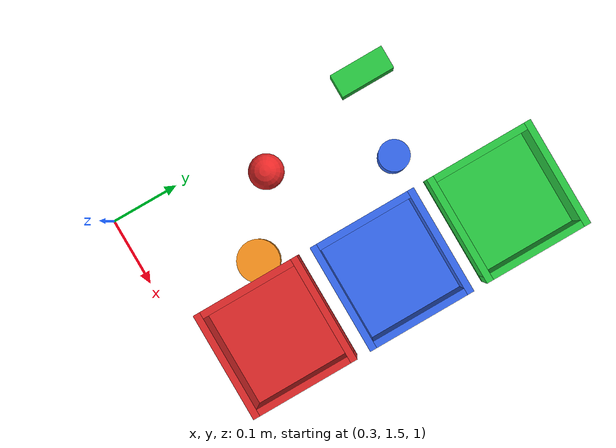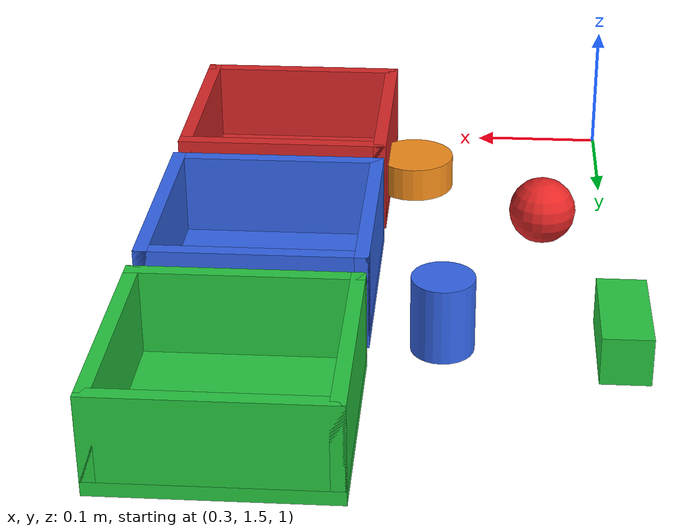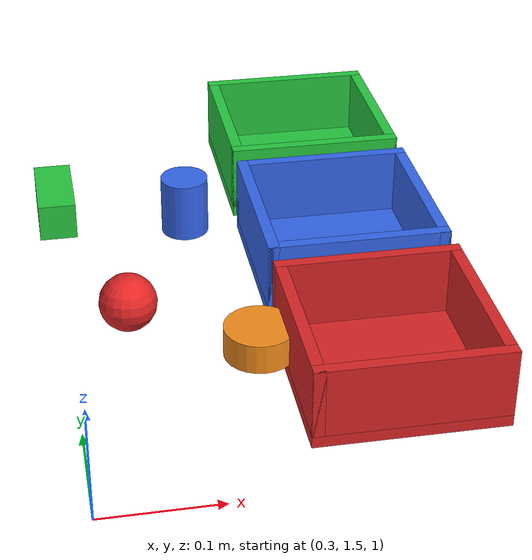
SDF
<sdf version="1.9">
 <world name="vla_pipeline_env">
  <physics name="1ms" type="ignored">
   <max_step_size>0.001</max_step_size>
   <real_time_factor>1.0</real_time_factor>
   <real_time_update_rate>1000</real_time_update_rate>
  </physics>
  <plugin name="gz::sim::systems::Physics" filename="gz-sim-physics-system"/>
  <plugin name="gz::sim::systems::UserCommands" filename="gz-sim-user-commands-system"/>
  <plugin name="gz::sim::systems::Sensors" filename="gz-sim-sensors-system">
   <render_engine>ogre2</render_engine>
  </plugin>
  <plugin name="gz::sim::systems::SceneBroadcaster" filename="gz-sim-scene-broadcaster-system"/>
  <scene>
   <ambient>0.50 0.50 0.50 1</ambient>
   <background>0.68 0.72 0.76 1</background>
   <shadows>true</shadows>
  </scene>
  <gravity>0 0 -9.8</gravity>
  <include><uri>model://ground_plane</uri></include>
  <include><uri>model://sun</uri></include>
  <model name="obj_sphere">
   <static>false</static>
   <pose>0.350 1.720 1.040 0 0 0</pose>
   <link name="link">
    <inertial>
     <mass>0.08</mass>
     <inertia>
      <ixx>0.000020</ixx>
      <ixy>0.0</ixy>
      <ixz>0.0</ixz>
      <iyy>0.000020</iyy>
      <iyz>0.0</iyz>
      <izz>0.000020</izz>
     </inertia>
    </inertial>
    <collision name="collision"><geometry><sphere><radius>0.025</radius></sphere></geometry></collision>
    <visual name="visual">
     <geometry><sphere><radius>0.025</radius></sphere></geometry>
     <material>
      <ambient>0.90 0.15 0.15 1</ambient>
      <diffuse>0.90 0.15 0.15 1</diffuse>
      <specular>0.20 0.05 0.05 1</specular>
     </material>
    </visual>
   </link>
  </model>
  <model name="obj_cylinder">
   <static>false</static>
   <pose>0.420 1.880 1.040 0 0 0</pose>
   <link name="link">
    <inertial>
     <mass>0.10</mass>
     <inertia>
      <ixx>0.000018</ixx>
      <ixy>0.0</ixy>
      <ixz>0.0</ixz>
      <iyy>0.000018</iyy>
      <iyz>0.0</iyz>
      <izz>0.000012</izz>
     </inertia>
    </inertial>
    <collision name="collision">
     <geometry><cylinder><radius>0.022</radius><length>0.055</length></cylinder></geometry>
    </collision>
    <visual name="visual">
     <geometry><cylinder><radius>0.022</radius><length>0.055</length></cylinder></geometry>
     <material>
      <ambient>0.20 0.40 0.92 1</ambient>
      <diffuse>0.20 0.40 0.92 1</diffuse>
      <specular>0.05 0.08 0.20 1</specular>
     </material>
    </visual>
   </link>
  </model>
  <model name="obj_brick">
   <static>false</static>
   <pose>0.300 1.900 1.042 0 0 0</pose>
   <link name="link">
    <inertial>
     <mass>0.10</mass>
     <inertia>
      <ixx>0.000012</ixx>
      <ixy>0.0</ixy>
      <ixz>0.0</ixz>
      <iyy>0.000030</iyy>
      <iyz>0.0</iyz>
      <izz>0.000030</izz>
     </inertia>
    </inertial>
    <collision name="collision"><geometry><box><size>0.034 0.080 0.034</size></box></geometry></collision>
    <visual name="visual">
     <geometry><box><size>0.034 0.080 0.034</size></box></geometry>
     <material>
      <ambient>0.15 0.78 0.25 1</ambient>
      <diffuse>0.15 0.78 0.25 1</diffuse>
      <specular>0.05 0.15 0.05 1</specular>
     </material>
    </visual>
   </link>
  </model>
  <model name="obj_puck">
   <static>false</static>
   <pose>0.450 1.650 1.038 0 0 0</pose>
   <link name="link">
    <inertial>
     <mass>0.08</mass>
     <inertia>
      <ixx>0.000015</ixx>
      <ixy>0.0</ixy>
      <ixz>0.0</ixz>
      <iyy>0.000015</iyy>
      <iyz>0.0</iyz>
      <izz>0.000022</izz>
     </inertia>
    </inertial>
    <collision name="collision">
     <geometry><cylinder><radius>0.030</radius><length>0.026</length></cylinder></geometry>
    </collision>
    <visual name="visual">
     <geometry><cylinder><radius>0.030</radius><length>0.026</length></cylinder></geometry>
     <material>
      <ambient>0.95 0.55 0.10 1</ambient>
      <diffuse>0.95 0.55 0.10 1</diffuse>
      <specular>0.15 0.08 0.02 1</specular>
     </material>
    </visual>
   </link>
  </model>
  <model name="basket_red">
   <static>true</static>
   <pose>0.550 1.620 1.015 0 0 0</pose>
   <link name="link">
    <collision name="floor"><geometry><box><size>0.160 0.160 0.010</size></box></geometry></collision>
    <visual name="floor_vis">
     <geometry><box><size>0.160 0.160 0.010</size></box></geometry>
     <material><ambient>0.85 0.15 0.15 1</ambient><diffuse>0.85 0.15 0.15 1</diffuse></material>
    </visual>
    <collision name="wall_f">
     <pose>0 -0.075 0.035 0 0 0</pose>
     <geometry><box><size>0.160 0.010 0.060</size></box></geometry>
    </collision>
    <visual name="wall_f_vis">
     <pose>0 -0.075 0.035 0 0 0</pose>
     <geometry><box><size>0.160 0.010 0.060</size></box></geometry>
     <material><ambient>0.85 0.15 0.15 1</ambient><diffuse>0.85 0.15 0.15 1</diffuse></material>
    </visual>
    <collision name="wall_b">
     <pose>0 0.075 0.035 0 0 0</pose>
     <geometry><box><size>0.160 0.010 0.060</size></box></geometry>
    </collision>
    <visual name="wall_b_vis">
     <pose>0 0.075 0.035 0 0 0</pose>
     <geometry><box><size>0.160 0.010 0.060</size></box></geometry>
     <material><ambient>0.85 0.15 0.15 1</ambient><diffuse>0.85 0.15 0.15 1</diffuse></material>
    </visual>
    <collision name="wall_l">
     <pose>-0.075 0 0.035 0 0 0</pose>
     <geometry><box><size>0.010 0.160 0.060</size></box></geometry>
    </collision>
    <visual name="wall_l_vis">
     <pose>-0.075 0 0.035 0 0 0</pose>
     <geometry><box><size>0.010 0.160 0.060</size></box></geometry>
     <material><ambient>0.85 0.15 0.15 1</ambient><diffuse>0.85 0.15 0.15 1</diffuse></material>
    </visual>
    <collision name="wall_r">
     <pose>0.075 0 0.035 0 0 0</pose>
     <geometry><box><size>0.010 0.160 0.060</size></box></geometry>
    </collision>
    <visual name="wall_r_vis">
     <pose>0.075 0 0.035 0 0 0</pose>
     <geometry><box><size>0.010 0.160 0.060</size></box></geometry>
     <material><ambient>0.85 0.15 0.15 1</ambient><diffuse>0.85 0.15 0.15 1</diffuse></material>
    </visual>
   </link>
  </model>
  <model name="basket_blue">
   <static>true</static>
   <pose>0.550 1.800 1.015 0 0 0</pose>
   <link name="link">
    <collision name="floor"><geometry><box><size>0.160 0.160 0.010</size></box></geometry></collision>
    <visual name="floor_vis">
     <geometry><box><size>0.160 0.160 0.010</size></box></geometry>
     <material><ambient>0.20 0.40 0.92 1</ambient><diffuse>0.20 0.40 0.92 1</diffuse></material>
    </visual>
    <collision name="wall_f">
     <pose>0 -0.075 0.035 0 0 0</pose>
     <geometry><box><size>0.160 0.010 0.060</size></box></geometry>
    </collision>
    <visual name="wall_f_vis">
     <pose>0 -0.075 0.035 0 0 0</pose>
     <geometry><box><size>0.160 0.010 0.060</size></box></geometry>
     <material><ambient>0.20 0.40 0.92 1</ambient><diffuse>0.20 0.40 0.92 1</diffuse></material>
    </visual>
    <collision name="wall_b">
     <pose>0 0.075 0.035 0 0 0</pose>
     <geometry><box><size>0.160 0.010 0.060</size></box></geometry>
    </collision>
    <visual name="wall_b_vis">
     <pose>0 0.075 0.035 0 0 0</pose>
     <geometry><box><size>0.160 0.010 0.060</size></box></geometry>
     <material><ambient>0.20 0.40 0.92 1</ambient><diffuse>0.20 0.40 0.92 1</diffuse></material>
    </visual>
    <collision name="wall_l">
     <pose>-0.075 0 0.035 0 0 0</pose>
     <geometry><box><size>0.010 0.160 0.060</size></box></geometry>
    </collision>
    <visual name="wall_l_vis">
     <pose>-0.075 0 0.035 0 0 0</pose>
     <geometry><box><size>0.010 0.160 0.060</size></box></geometry>
     <material><ambient>0.20 0.40 0.92 1</ambient><diffuse>0.20 0.40 0.92 1</diffuse></material>
    </visual>
    <collision name="wall_r">
     <pose>0.075 0 0.035 0 0 0</pose>
     <geometry><box><size>0.010 0.160 0.060</size></box></geometry>
    </collision>
    <visual name="wall_r_vis">
     <pose>0.075 0 0.035 0 0 0</pose>
     <geometry><box><size>0.010 0.160 0.060</size></box></geometry>
     <material><ambient>0.20 0.40 0.92 1</ambient><diffuse>0.20 0.40 0.92 1</diffuse></material>
    </visual>
   </link>
  </model>
  <model name="basket_green">
   <static>true</static>
   <pose>0.550 1.980 1.015 0 0 0</pose>
   <link name="link">
    <collision name="floor"><geometry><box><size>0.160 0.160 0.010</size></box></geometry></collision>
    <visual name="floor_vis">
     <geometry><box><size>0.160 0.160 0.010</size></box></geometry>
     <material><ambient>0.15 0.78 0.25 1</ambient><diffuse>0.15 0.78 0.25 1</diffuse></material>
    </visual>
    <collision name="wall_f">
     <pose>0 -0.075 0.035 0 0 0</pose>
     <geometry><box><size>0.160 0.010 0.060</size></box></geometry>
    </collision>
    <visual name="wall_f_vis">
     <pose>0 -0.075 0.035 0 0 0</pose>
     <geometry><box><size>0.160 0.010 0.060</size></box></geometry>
     <material><ambient>0.15 0.78 0.25 1</ambient><diffuse>0.15 0.78 0.25 1</diffuse></material>
    </visual>
    <collision name="wall_b">
     <pose>0 0.075 0.035 0 0 0</pose>
     <geometry><box><size>0.160 0.010 0.060</size></box></geometry>
    </collision>
    <visual name="wall_b_vis">
     <pose>0 0.075 0.035 0 0 0</pose>
     <geometry><box><size>0.160 0.010 0.060</size></box></geometry>
     <material><ambient>0.15 0.78 0.25 1</ambient><diffuse>0.15 0.78 0.25 1</diffuse></material>
    </visual>
    <collision name="wall_l">
     <pose>-0.075 0 0.035 0 0 0</pose>
     <geometry><box><size>0.010 0.160 0.060</size></box></geometry>
    </collision>
    <visual name="wall_l_vis">
     <pose>-0.075 0 0.035 0 0 0</pose>
     <geometry><box><size>0.010 0.160 0.060</size></box></geometry>
     <material><ambient>0.15 0.78 0.25 1</ambient><diffuse>0.15 0.78 0.25 1</diffuse></material>
    </visual>
    <collision name="wall_r">
     <pose>0.075 0 0.035 0 0 0</pose>
     <geometry><box><size>0.010 0.160 0.060</size></box></geometry>
    </collision>
    <visual name="wall_r_vis">
     <pose>0.075 0 0.035 0 0 0</pose>
     <geometry><box><size>0.010 0.160 0.060</size></box></geometry>
     <material><ambient>0.15 0.78 0.25 1</ambient><diffuse>0.15 0.78 0.25 1</diffuse></material>
    </visual>
   </link>
  </model>
 </world>
</sdf>
